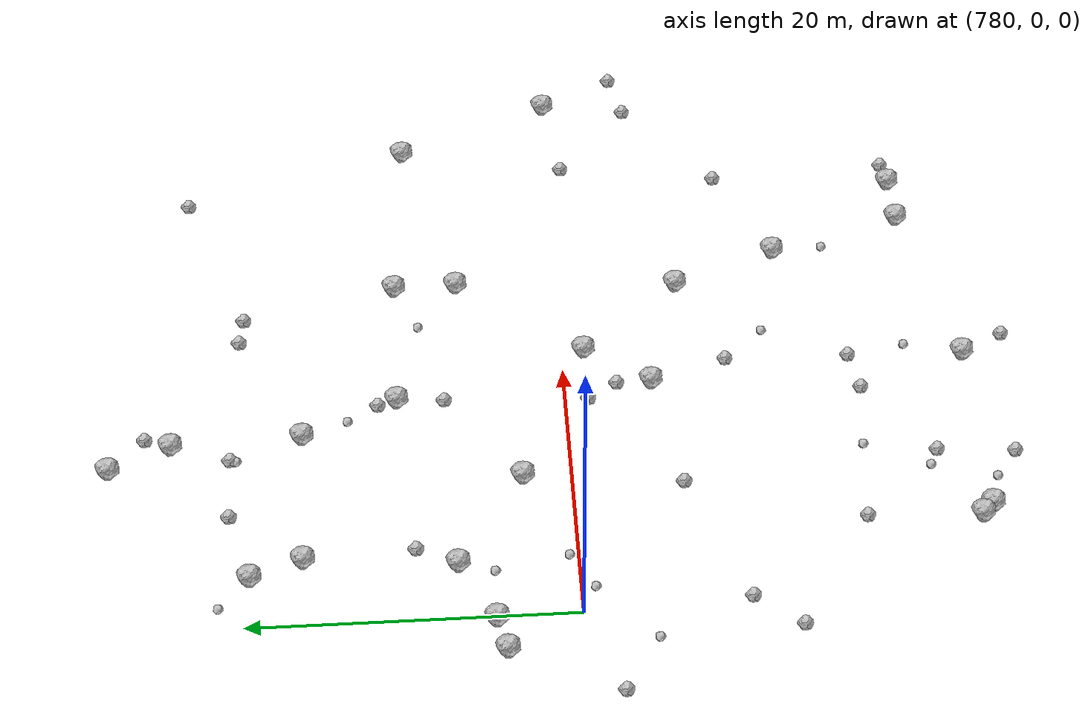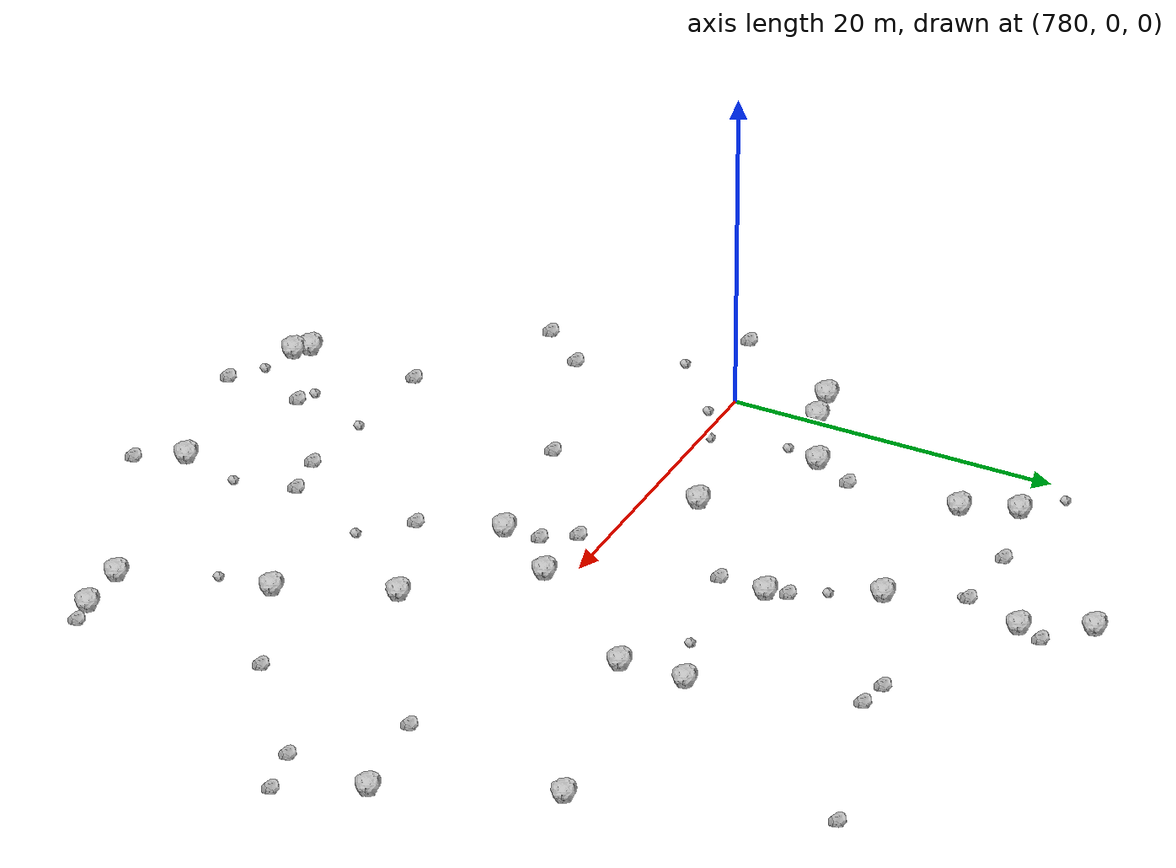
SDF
<sdf version="1.6">
 <world name="default">
  <include><uri>model://sun</uri></include>
  <model name="rock1_20_4">
   <include><uri>model://rock1</uri><pose>791.0909989106193 3.0150041646493264 0.5 0 0 0</pose></include>
  </model>
  <model name="rock1_20_5">
   <include><uri>model://rock1</uri><pose>786.2889370849042 -24.629249747359843 0.5 0 0 0</pose></include>
  </model>
  <model name="rock1_20_6">
   <include><uri>model://rock1</uri><pose>797.9160158876324 10.539186042702326 0.5 0 0 0</pose></include>
  </model>
  <model name="rock1_20_7">
   <include><uri>model://rock1</uri><pose>795.1408342335338 16.477689312575954 0.5 0 0 0</pose></include>
  </model>
  <model name="rock1_20_8">
   <include><uri>model://rock1</uri><pose>783.7885298476209 19.701576613747335 0.5 0 0 0</pose></include>
  </model>
  <model name="rock1_20_9">
   <include><uri>model://rock1</uri><pose>794.7531813939629 24.563978636962055 0.5 0 0 0</pose></include>
  </model>
  <model name="rock1_20_10">
   <include><uri>model://rock1</uri><pose>816.0151605787299 -22.53521226859864 0.5 0 0 0</pose></include>
  </model>
  <model name="rock1_20_11">
   <include><uri>model://rock1</uri><pose>785.0328645673658 16.507748344975617 0.5 0 0 0</pose></include>
  </model>
  <model name="rock1_20_12">
   <include><uri>model://rock1</uri><pose>809.942843610259 -14.221219624808159 0.5 0 0 0</pose></include>
  </model>
  <model name="rock1_20_13">
   <include><uri>model://rock1</uri><pose>807.2318627029738 -7.657027227211973 0.5 0 0 0</pose></include>
  </model>
  <model name="rock1_20_14">
   <include><uri>model://rock1</uri><pose>792.9447176000306 28.361928825529155 0.5 0 0 0</pose></include>
  </model>
  <model name="rock1_20_15">
   <include><uri>model://rock1</uri><pose>777.4505810036 4.601195274067095 0.5 0 0 0</pose></include>
  </model>
  <model name="rock1_20_16">
   <include><uri>model://rock1</uri><pose>820.7130024386008 9.570519144507458 0.5 0 0 0</pose></include>
  </model>
  <model name="rock1_20_17">
   <include><uri>model://rock1</uri><pose>801.6307334357555 -1.3784284513492224 0.5 0 0 0</pose></include>
  </model>
  <model name="rock1_20_18">
   <include><uri>model://rock1</uri><pose>812.5685756895184 -22.65708872278381 0.5 0 0 0</pose></include>
  </model>
  <model name="rock1_20_19">
   <include><uri>model://rock1</uri><pose>807.85982070763 10.446404189816839 0.5 0 0 0</pose></include>
  </model>
  <model name="rock1_20_20">
   <include><uri>model://rock1</uri><pose>779.8335056070317 5.130978565356358 0.5 0 0 0</pose></include>
  </model>
  <model name="rock1_20_21">
   <include><uri>model://rock1</uri><pose>799.9829044372561 -25.25869333732616 0.5 0 0 0</pose></include>
  </model>
  <model name="rock1_20_22">
   <include><uri>model://rock1</uri><pose>824.882057463846 -0.09180838978050687 0.5 0 0 0</pose></include>
  </model>
  <model name="rock1_20_23">
   <include><uri>model://rock1</uri><pose>807.9294020860298 6.484268055451743 0.5 0 0 0</pose></include>
  </model>
  <model name="rock1_20_24">
   <include><uri>model://rock1</uri><pose>787.0613904388707 -25.34333549341401 0.5 0 0 0</pose></include>
  </model>
  <model name="rock1_20_25">
   <include><uri>model://rock1</uri><pose>798.663358579968 -5.444024234692559 0.5 0 0 0</pose></include>
  </model>
  <model name="rock1_20_26">
   <include><uri>model://rock1</uri><pose>784.2222170219545 7.242986179513153 0.5 0 0 0</pose></include>
  </model>
  <model name="rock2_20_0">
   <include><uri>model://rock2</uri><pose>816.9084520373025 -10.990149398166139 0.3 0 0 0</pose></include>
  </model>
  <model name="rock2_20_1">
   <include><uri>model://rock2</uri><pose>818.439854218862 -0.947050709729325 0.3 0 0 0</pose></include>
  </model>
  <model name="rock2_20_2">
   <include><uri>model://rock2</uri><pose>786.4230229458051 -17.634179036003054 0.3 0 0 0</pose></include>
  </model>
  <model name="rock2_20_3">
   <include><uri>model://rock2</uri><pose>805.3531803793561 20.09457789215724 0.3 0 0 0</pose></include>
  </model>
  <model name="rock2_20_4">
   <include><uri>model://rock2</uri><pose>823.9091321541168 -5.470170684117189 0.3 0 0 0</pose></include>
  </model>
  <model name="rock2_20_5">
   <include><uri>model://rock2</uri><pose>797.6036242391067 7.596599645435624 0.3 0 0 0</pose></include>
  </model>
  <model name="rock2_20_6">
   <include><uri>model://rock2</uri><pose>817.5486031483294 -22.273194236726088 0.3 0 0 0</pose></include>
  </model>
  <model name="rock2_20_7">
   <include><uri>model://rock2</uri><pose>801.2920787486336 -27.94200894604836 0.3 0 0 0</pose></include>
  </model>
  <model name="rock2_20_8">
   <include><uri>model://rock2</uri><pose>803.394453616461 20.377287242956342 0.3 0 0 0</pose></include>
  </model>
  <model name="rock2_20_9">
   <include><uri>model://rock2</uri><pose>773.8647492272958 -2.0639859124685174 0.3 0 0 0</pose></include>
  </model>
  <model name="rock2_20_10">
   <include><uri>model://rock2</uri><pose>800.1727888047806 -10.235824135434854 0.3 0 0 0</pose></include>
  </model>
  <model name="rock2_20_11">
   <include><uri>model://rock2</uri><pose>827.1763708933472 -4.740139842862494 0.3 0 0 0</pose></include>
  </model>
  <model name="rock2_20_12">
   <include><uri>model://rock2</uri><pose>795.26844939807 26.168826666891505 0.3 0 0 0</pose></include>
  </model>
  <model name="rock2_20_13">
   <include><uri>model://rock2</uri><pose>800.0275371193051 -18.008745835776082 0.3 0 0 0</pose></include>
  </model>
  <model name="rock2_20_14">
   <include><uri>model://rock2</uri><pose>797.1875577392266 -18.49654652070369 0.3 0 0 0</pose></include>
  </model>
  <model name="rock2_20_15">
   <include><uri>model://rock2</uri><pose>798.4648559582015 -3.2503741386578824 0.3 0 0 0</pose></include>
  </model>
  <model name="rock2_20_16">
   <include><uri>model://rock2</uri><pose>778.1891102330461 -12.919284351585919 0.3 0 0 0</pose></include>
  </model>
  <model name="rock2_20_17">
   <include><uri>model://rock2</uri><pose>780.5201465694173 -10.086621831055396 0.3 0 0 0</pose></include>
  </model>
  <model name="rock2_20_18">
   <include><uri>model://rock2</uri><pose>797.3959649984803 11.740193544424628 0.3 0 0 0</pose></include>
  </model>
  <model name="rock2_20_19">
   <include><uri>model://rock2</uri><pose>791.2081279661569 -27.338498850494485 0.3 0 0 0</pose></include>
  </model>
  <model name="rock2_20_20">
   <include><uri>model://rock2</uri><pose>789.8867494143658 -6.789735597546567 0.3 0 0 0</pose></include>
  </model>
  <model name="rock2_20_21">
   <include><uri>model://rock2</uri><pose>797.2366967633069 -1.415405930812959 0.3 0 0 0</pose></include>
  </model>
  <model name="rock2_20_22">
   <include><uri>model://rock2</uri><pose>788.6140875965293 20.948579852365363 0.3 0 0 0</pose></include>
  </model>
  <model name="rock2_20_23">
   <include><uri>model://rock2</uri><pose>816.2655817133209 23.72443470588228 0.3 0 0 0</pose></include>
  </model>
  <model name="rock2_20_24">
   <include><uri>model://rock2</uri><pose>785.3768839718593 9.736457688428487 0.3 0 0 0</pose></include>
  </model>
  <model name="rock2_20_25">
   <include><uri>model://rock2</uri><pose>791.5909902514042 -22.53742463131199 0.3 0 0 0</pose></include>
  </model>
  <model name="rock2_20_26">
   <include><uri>model://rock2</uri><pose>793.2739039131193 20.905724667849874 0.3 0 0 0</pose></include>
  </model>
  <model name="rock3_20_0">
   <include><uri>model://rock3</uri><pose>792.3861784751966 -18.11291354511797 0.2 0 0 0</pose></include>
  </model>
  <model name="rock3_20_1">
   <include><uri>model://rock3</uri><pose>783.4320320891422 5.027761838310482 0.2 0 0 0</pose></include>
  </model>
  <model name="rock3_20_2">
   <include><uri>model://rock3</uri><pose>797.938295083839 10.627577355155537 0.2 0 0 0</pose></include>
  </model>
  <model name="rock3_20_3">
   <include><uri>model://rock3</uri><pose>789.2345624461539 -26.01692508140016 0.2 0 0 0</pose></include>
  </model>
  <model name="rock3_20_4">
   <include><uri>model://rock3</uri><pose>800.8152283498823 -21.70363095448888 0.2 0 0 0</pose></include>
  </model>
  <model name="rock3_20_5">
   <include><uri>model://rock3</uri><pose>777.7572836389731 -4.369174617015393 0.2 0 0 0</pose></include>
  </model>
  <model name="rock3_20_6">
   <include><uri>model://rock3</uri><pose>781.429141689938 21.51126690697042 0.2 0 0 0</pose></include>
  </model>
  <model name="rock3_20_7">
   <include><uri>model://rock3</uri><pose>796.1905681594835 13.603493937139234 0.2 0 0 0</pose></include>
  </model>
  <model name="rock3_20_8">
   <include><uri>model://rock3</uri><pose>804.1858523381056 8.981771310404 0.2 0 0 0</pose></include>
  </model>
  <model name="rock3_20_9">
   <include><uri>model://rock3</uri><pose>781.8628635723181 -0.869596606462963 0.2 0 0 0</pose></include>
  </model>
  <model name="rock3_20_10">
   <include><uri>model://rock3</uri><pose>790.4167135454286 -22.065787862598402 0.2 0 0 0</pose></include>
  </model>
  <model name="rock3_20_11">
   <include><uri>model://rock3</uri><pose>784.4430980960008 0.5259220627899239 0.2 0 0 0</pose></include>
  </model>
  <model name="rock3_20_12">
   <include><uri>model://rock3</uri><pose>793.2147759207414 20.478878663879996 0.2 0 0 0</pose></include>
  </model>
  <model name="rock3_20_13">
   <include><uri>model://rock3</uri><pose>810.0317467188202 -17.51212616507804 0.2 0 0 0</pose></include>
  </model>
  <model name="rock3_20_14">
   <include><uri>model://rock3</uri><pose>802.6077018488343 -12.820513923901256 0.2 0 0 0</pose></include>
  </model>
 </world>
</sdf>
